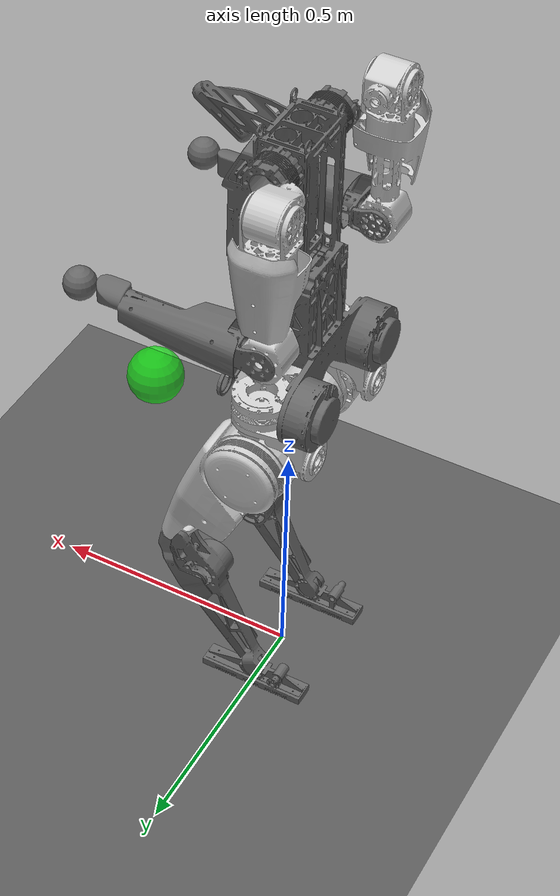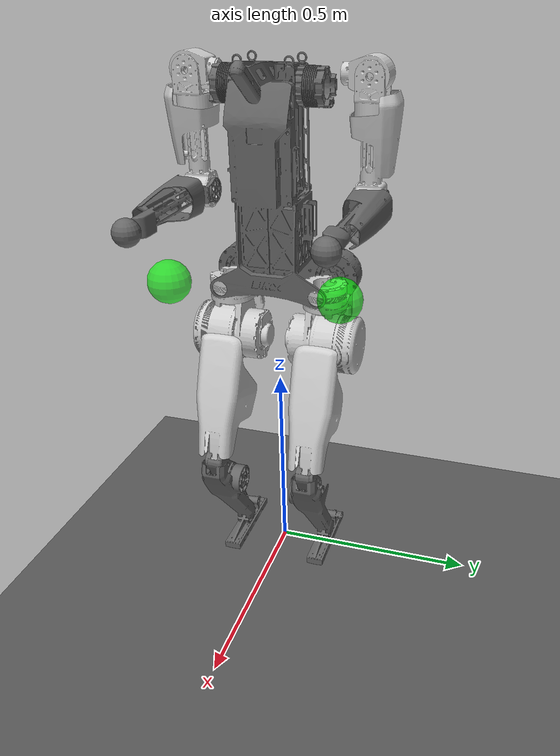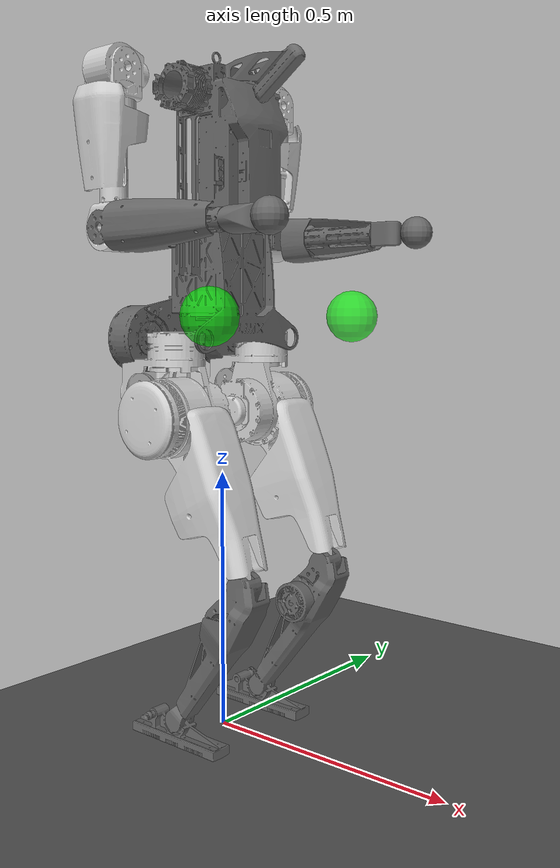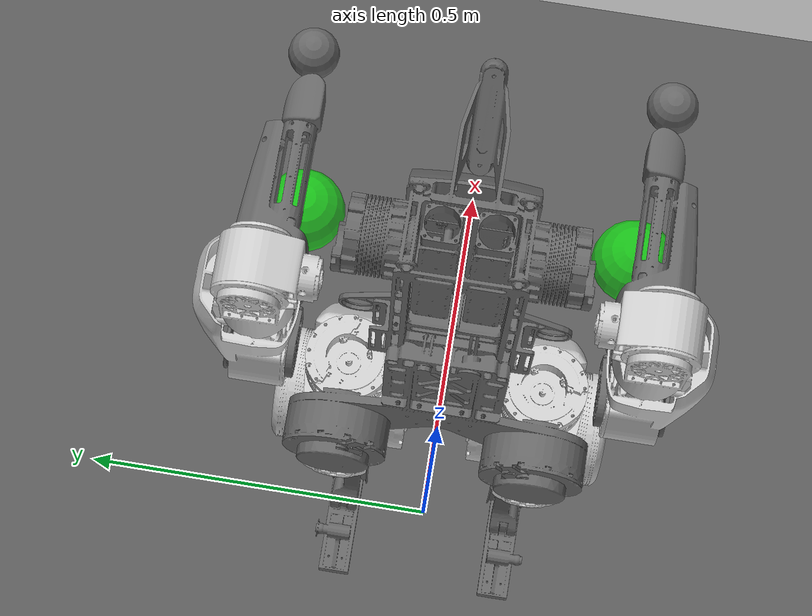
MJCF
<mujoco model="humanoid_limx">
    <compiler angle="radian" meshdir="../meshes" autolimits="true"/>
    <size njmax="5000" nconmax="10000"/>
    <asset>
        <mesh name="base_link" file="base_link.STL"/>
        <mesh name="shoulder_pitch_L" file="shoulder_pitch_L.STL"/>
        <mesh name="shoulder_roll_L" file="shoulder_roll_L.STL"/>
        <mesh name="shoulder_yaw_L" file="shoulder_yaw_L.STL"/>
        <mesh name="elbow_L" file="elbow_L.STL"/>
        <mesh name="hip_roll_L" file="hip_roll_L.STL"/>
        <mesh name="hip_yaw_L" file="hip_yaw_L.STL"/>
        <mesh name="hip_pitch_L" file="hip_pitch_L.STL"/>
        <mesh name="knee_L" file="knee_L.STL"/>
        <mesh name="ankle_L" file="ankle_L.STL"/>
        <mesh name="shoulder_pitch_R" file="shoulder_pitch_R.STL"/>
        <mesh name="shoulder_roll_R" file="shoulder_roll_R.STL"/>
        <mesh name="shoulder_yaw_R" file="shoulder_yaw_R.STL"/>
        <mesh name="elbow_R" file="elbow_R.STL"/>
        <mesh name="hip_roll_R" file="hip_roll_R.STL"/>
        <mesh name="hip_yaw_R" file="hip_yaw_R.STL"/>
        <mesh name="hip_pitch_R" file="hip_pitch_R.STL"/>
        <mesh name="knee_R" file="knee_R.STL"/>
        <mesh name="ankle_R" file="ankle_R.STL"/>
    </asset>

    <default>
        <light castshadow="false" diffuse="1 1 1"/>
        <camera fovy="60"/>
        <default class="visual1">
            <geom contype="0" conaffinity="0" group="1" type="mesh" rgba="0.4 0.4 0.4 1"/>
        </default>
        <default class="visual2">
            <geom contype="0" conaffinity="0" group="1" type="mesh" rgba="0.8 0.8 0.8 1"/>
        </default>
        <default class="collision">
            <geom type="mesh" contype="1" conaffinity="1" friction="1.0 0.3 0.3" rgba="0.5 0.6 0.7 0" margin="0.000"
                  group="0"/>
        </default>
        <joint damping="0.05" armature="0.01" frictionloss="0.01"/>
    </default>

    <visual>
        <rgba com="0.502 1.0 0 1.0" fog="0 0 0 1" contactpoint="0.9 0.9 0.9 0.8"
              contactforce="0.9 0.3 0.3 0.5"/>
        <scale com="0.05" forcewidth="0.04" contactwidth="0.10" contactheight="0.005" selectpoint="0.01"/>
        <map force="0.015"/>
    </visual>

    <asset>
        <texture type="skybox" builtin="gradient" width="512" height="512" rgb1=".4 .6 .8" rgb2="0 0 0"/>
        <texture name="texgeom" type="cube" builtin="flat" mark="cross" width="128" height="128"
                 rgb1="0.6 0.6 0.6" rgb2="0.6 0.6 0.6" markrgb="1 1 1"/>
        <texture name="texplane" type="2d" builtin="checker" rgb1=".4 .4 .4" rgb2=".6 .6 .6"
                 width="512" height="512"/>
        <material name='MatPlane' reflectance='0.3' texture="texplane" texrepeat="1 1" texuniform="true"
                  rgba=".7 .7 .7 1"/>
    </asset>
    <option timestep="0.001"/>

    <worldbody>
        <light directional="true" diffuse=".8 .8 .8" pos="0 0 10" dir="0 0 -10"/>
        <geom name="floor" pos="0 0 0" type="plane" size="0 0 1" material="MatPlane"
              friction="1.0 0.3 0.3"/>
        <camera name="track" mode="targetbody" target="base_link" pos="2.5 -2.3 1.2"
                xyaxes="1 0 0 0 0.707 0.707"/>
        <body name="base_link" pos="0 0 0.79">
            <inertial pos="-0.0670469 -1.69497e-11 0.164202"
                      quat="0.99542 -0.00051489 0.095589 -0.000947185" mass="15.603"
                      diaginertia="0.76682 0.707541 0.129351"/>
            <joint name="floating_base_joint" type="free" limited="false" actuatorfrclimited="false"/>
            <geom class="visual1" mesh="base_link"/>
            <geom class="collision" type="box" pos="-0.07 0 0.25" size="0.12 0.15 0.25"/>
            <geom class="collision" type="box" pos="-0.08 0 0.66" size="0.12 0.07 0.07"/>
            <site name="imu" pos="0 0 0"/>
            <body name="shoulder_pitch_L" pos="-0.0623 0.1458 0.43874">
                <inertial pos="-0.001548 0.05491 0" quat="0.477284 0.521728 -0.477284 0.521728"
                          mass="0.851488" diaginertia="0.000917426 0.000897044 0.000637572"/>
                <joint name="shoulder_pitch_L" pos="0 0 0" axis="0 -1 0" limited="true"
                       range="-1.0472 3.1416" damping="0.05" frictionloss="0.01"/>
                <geom class="visual2" mesh="shoulder_pitch_L"/>
                <body name="shoulder_roll_L" pos="0 0.0641 0">
                    <inertial pos="0.001833 0 -0.0698" quat="0.700848 0.0938716 0.0938716 0.700848"
                              mass="0.764557" diaginertia="0.00113472 0.00105809 0.000654711"/>
                    <joint name="shoulder_roll_L" pos="0 0 0" axis="-1 0 0" limited="true"
                           range="-3.1416 0.1745" damping="0.05" frictionloss="0.01"/>
                    <geom class="visual2" mesh="shoulder_roll_L"/>
                    <body name="shoulder_yaw_L" pos="0 0 -0.1109">
                        <inertial pos="0 -0.00171 -0.13998" quat="0.999962 -0.00870017 -0.00051122 -0.000543717"
                                  mass="0.908036" diaginertia="0.0026708 0.00263835 0.00065253"/>
                        <joint name="shoulder_yaw_L" pos="0 0 0" axis="0 0 1" limited="true"
                               range="-1.5708 1.5708" damping="0.05" frictionloss="0.01"/>
                        <geom class="visual2" mesh="shoulder_yaw_L"/>
                        <geom class="collision" mesh="shoulder_yaw_L"/>
                        <body name="elbow_L" pos="0 0 -0.16301">
                            <inertial pos="0.128539 0.00356718 0" quat="0.0182881 0.70687 -0.0182881 0.70687"
                                      mass="0.302673" diaginertia="0.00392681 0.0038464 0.000192242"/>
                            <joint name="elbow_L" pos="0 0 0" axis="0 1 0" limited="true" range="-0.6109 1.5708"
                                   damping="0.05" frictionloss="0.01"/>
                            <geom class="visual1" mesh="elbow_L"/>
                            <geom class="collision" mesh="elbow_L"/>
                            <geom class="visual1" name="contact_hand_L" type="sphere" size="0.03"
                                  pos="0.36062 0.0 0.0"/>
                        </body>
                    </body>
                </body>
            </body>
            <body name="hip_roll_L" pos="-0.1163 0.118 -0.13276">
                <inertial pos="0.08529 0.000132 0.06664" quat="0.00878682 0.505755 0.00812841 0.862594"
                          mass="1.3618" diaginertia="0.00510184 0.00460378 0.00161896"/>
                <joint name="hip_roll_L" pos="0 0 0" axis="-1 0 0" limited="true" range="-0.7854 0.7854"/>
                <geom class="visual2" mesh="hip_roll_L"/>
                <body name="hip_yaw_L" pos="0.113 0 0.0615">
                    <inertial pos="0 -0.04736 -0.09033" quat="0.698115 -0.112521 0.112495 0.698083"
                              mass="1.7157" diaginertia="0.00481123 0.00389335 0.00225019"/>
                    <joint name="hip_yaw_L" pos="0 0 0" axis="0 0 -1" limited="true" range="-0.5236 0.5236"/>
                    <geom class="visual2" mesh="hip_yaw_L"/>
                    <body name="hip_pitch_L" pos="0 -0.03 -0.1025">
                        <inertial pos="0.01593 0.05485 -0.02497" quat="0.705236 -0.218424 -0.149795 0.657643"
                                  mass="3.6457" diaginertia="0.0305267 0.0281106 0.00697766"/>
                        <joint name="hip_pitch_L" pos="0 0 0" axis="0 -1 0" limited="true" range="-1.396 1.431"/>
                        <geom class="visual2" mesh="hip_pitch_L"/>
                        <geom class="collision" mesh="hip_pitch_L"/>

                        <body name="knee_L" pos="0.165 0.012 -0.28579">
                            <inertial pos="-0.04996 0.0115 -0.0866" quat="0.883756 0.105034 0.244869 0.384684"
                                      mass="1.426" diaginertia="0.00806181 0.00802556 0.00100353"/>
                            <joint name="knee_L" pos="0 0 0" axis="0 1 0" limited="true" range="-0.5236 1.0472"/>
                            <geom class="visual1" mesh="knee_L"/>
                            <geom class="collision" mesh="knee_L"/>
                            <body name="ankle_L" pos="-0.165 0.0115 -0.28579">
                                <inertial pos="-0.00786607 0.00726723 -0.0172588"
                                          quat="0.508956 0.497842 0.525097 0.466251" mass="0.4853"
                                          diaginertia="0.00123642 0.00115614 0.000193479"/>
                                <joint name="ankle_L" pos="0 0 0" axis="0 -1 0" limited="true"
                                       range="-1.2566 0.6109"/>
                                <geom class="visual1" mesh="ankle_L"/>
                                <geom class="collision" mesh="ankle_L"/>
                            </body>
                        </body>
                    </body>
                </body>
            </body>
            <body name="shoulder_pitch_R" pos="-0.0623 -0.1458 0.43874">
                <inertial pos="-0.001548 -0.05491 0" quat="0.521728 0.477284 -0.521728 0.477284"
                          mass="0.851488" diaginertia="0.000917426 0.000897044 0.000637572"/>
                <joint name="shoulder_pitch_R" pos="0 0 0" axis="0 -1 0" limited="true"
                       range="-1.0472 3.1416" damping="0.05" frictionloss="0.01"/>
                <geom class="visual2" mesh="shoulder_pitch_R"/>
                <body name="shoulder_roll_R" pos="0 -0.0641 0">
                    <inertial pos="0.001833 0 -0.0698" quat="0.700848 0.0938716 0.0938716 0.700848"
                              mass="0.764557" diaginertia="0.00113472 0.00105809 0.000654711"/>
                    <joint name="shoulder_roll_R" pos="0 0 0" axis="-1 0 0" limited="true"
                           range="-0.1745 3.1416" damping="0.05" frictionloss="0.01"/>
                    <geom class="visual2" mesh="shoulder_roll_R"/>
                    <body name="shoulder_yaw_R" pos="0 0 -0.1109">
                        <inertial pos="0 0.00171 -0.13998" quat="0.999962 0.00870017 -0.00051122 0.000543717"
                                  mass="0.908036" diaginertia="0.0026708 0.00263835 0.00065253"/>
                        <joint name="shoulder_yaw_R" pos="0 0 0" axis="0 0 1" limited="true"
                               range="-1.5708 1.5708" damping="0.05" frictionloss="0.01"/>
                        <geom class="visual2" mesh="shoulder_yaw_R"/>
                        <geom class="collision" mesh="shoulder_yaw_R"/>
                        <body name="elbow_R" pos="0 0 -0.16301">
                            <inertial pos="0.128539 -0.00356718 0" quat="-0.0182881 0.70687 0.0182881 0.70687"
                                      mass="0.302673" diaginertia="0.00392681 0.0038464 0.000192242"/>
                            <joint name="elbow_R" pos="0 0 0" axis="0 -1 0" limited="true" range="-1.5708 0.6109"
                                   damping="0.05" frictionloss="0.01"/>
                            <geom class="visual1" mesh="elbow_R"/>
                            <geom class="collision" mesh="elbow_R"/>
                            <geom class="visual1" name="contact_hand_R" type="sphere" size="0.03"
                                  pos="0.36062 0.0 0.0"/>
                        </body>
                    </body>
                </body>
            </body>
            <body name="hip_roll_R" pos="-0.1163 -0.118 -0.13276">
                <inertial pos="0.08531 -0.000147 0.06664" quat="-0.00756888 0.507324 -0.00692139 0.861695"
                          mass="1.3618" diaginertia="0.0050971 0.00463587 0.00159415"/>
                <joint name="hip_roll_R" pos="0 0 0" axis="-1 0 0" limited="true" range="-0.7854 0.7854"/>
                <geom class="visual2" mesh="hip_roll_R"/>
                <body name="hip_yaw_R" pos="0.113 0 0.0615">
                    <inertial pos="0 0.04736 -0.09033" quat="0.698115 0.112521 -0.112495 0.698083"
                              mass="1.7157" diaginertia="0.00481123 0.00389335 0.00225019"/>
                    <joint name="hip_yaw_R" pos="0 0 0" axis="0 0 -1" limited="true" range="-0.5236 0.5236"/>
                    <geom class="visual2" mesh="hip_yaw_R"/>
                    <body name="hip_pitch_R" pos="0 0.03 -0.1025">
                        <inertial pos="0.01587 -0.05485 -0.02497" quat="0.658696 -0.149722 -0.21864 0.704201"
                                  mass="3.6457" diaginertia="0.0305322 0.0281308 0.00696771"/>
                        <joint name="hip_pitch_R" pos="0 0 0" axis="0 1 0" limited="true" range="-1.431 1.396"/>
                        <geom class="visual2" mesh="hip_pitch_R"/>
                        <geom class="collision" mesh="hip_pitch_R"/>
                        <body name="knee_R" pos="0.165 -0.012 -0.28579">
                            <inertial pos="-0.04997 -0.01151 -0.0866" quat="0.383548 0.245063 0.104576 0.88425"
                                      mass="1.426" diaginertia="0.00806158 0.00802508 0.00100385"/>
                            <joint name="knee_R" pos="0 0 0" axis="0 -1 0" limited="true" range="-1.0472 0.5236"/>
                            <geom class="visual1" mesh="knee_R"/>
                            <geom class="collision" mesh="knee_R"/>
                            <body name="ankle_R" pos="-0.165 -0.0115 -0.28579">
                                <inertial pos="-0.00786806 -0.00726723 -0.0172588"
                                          quat="0.466251 0.525097 0.497843 0.508956" mass="0.4853"
                                          diaginertia="0.00123642 0.00115614 0.000193479"/>
                                <joint name="ankle_R" pos="0 0 0" axis="0 1 0" limited="true" range="-0.6109 1.2566"/>
                                <geom class="visual1" mesh="ankle_R"/>
                                <geom class="collision" mesh="ankle_R"/>
                            </body>
                        </body>
                    </body>
                </body>
            </body>
        </body>
        <body name="target_pos_L" mocap="true" pos="0.16 0.2 0.8">
            <geom class="visual1" type="sphere" size=".05" rgba="0 1 0 0.65"/>
        </body>
        <body name="target_pos_R" mocap="true" pos="0.16 -0.2 0.8">
            <geom class="visual1" type="sphere" size=".05" rgba="0 1 0 0.65"/>
        </body>
    </worldbody>

    <actuator>

        <motor name="hip_roll_L" gear="1" joint="hip_roll_L"/>
        <motor name="hip_yaw_L" gear="1" joint="hip_yaw_L"/>
        <motor name="hip_pitch_L" gear="1" joint="hip_pitch_L"/>
        <motor name="knee_L" gear="1" joint="knee_L"/>
        <motor name="ankle_L" gear="1" joint="ankle_L"/>
        <motor name="hip_roll_R" gear="1" joint="hip_roll_R"/>
        <motor name="hip_yaw_R" gear="1" joint="hip_yaw_R"/>
        <motor name="hip_pitch_R" gear="1" joint="hip_pitch_R"/>
        <motor name="knee_R" gear="1" joint="knee_R"/>
        <motor name="ankle_R" gear="1" joint="ankle_R"/>
        <motor name="shoulder_pitch_L" gear="1" joint="shoulder_pitch_L"/>
        <motor name="shoulder_roll_L" gear="1" joint="shoulder_roll_L"/>
        <motor name="shoulder_yaw_L" gear="1" joint="shoulder_yaw_L"/>
        <motor name="elbow_L" gear="1" joint="elbow_L"/>
        <motor name="shoulder_pitch_R" gear="1" joint="shoulder_pitch_R"/>
        <motor name="shoulder_roll_R" gear="1" joint="shoulder_roll_R"/>
        <motor name="shoulder_yaw_R" gear="1" joint="shoulder_yaw_R"/>
        <motor name="elbow_R" gear="1" joint="elbow_R"/>
    </actuator>

    <sensor>
        <framequat name="Body_Quat" objtype="site" objname="imu"/>
        <gyro name="Body_Gyro" site="imu"/>
        <accelerometer name="Body_Acc" site="imu"/>
    </sensor>
</mujoco>
